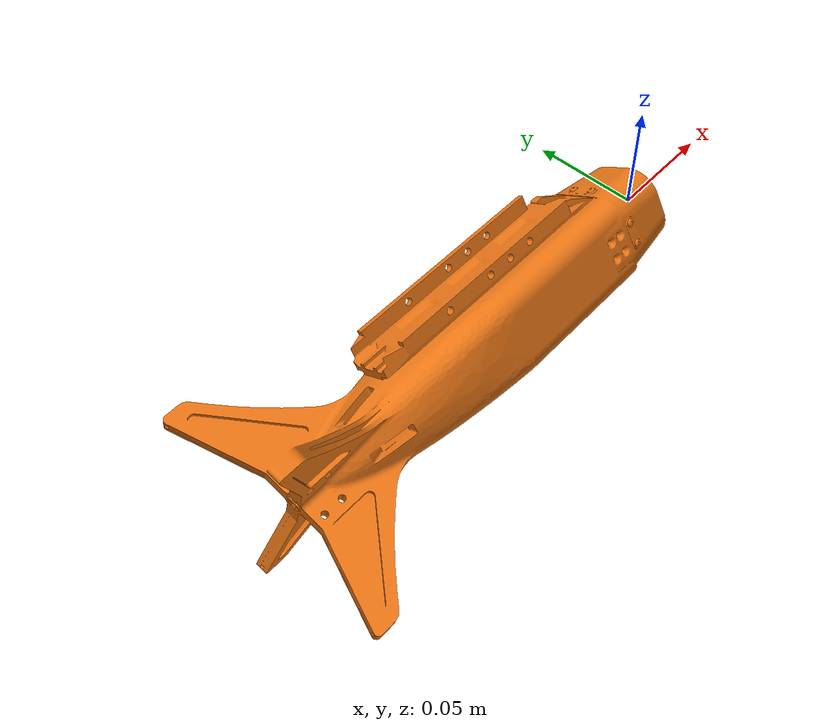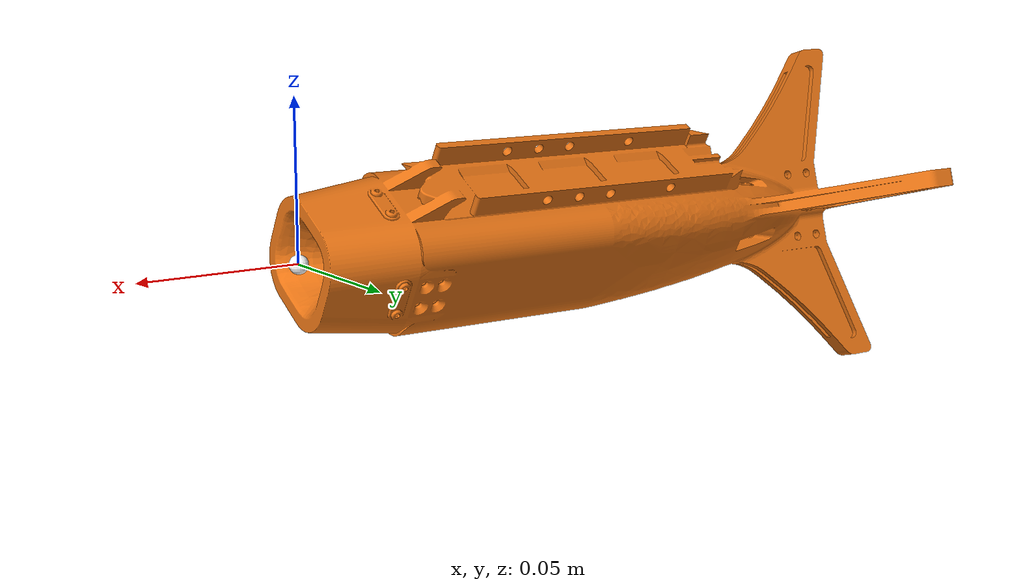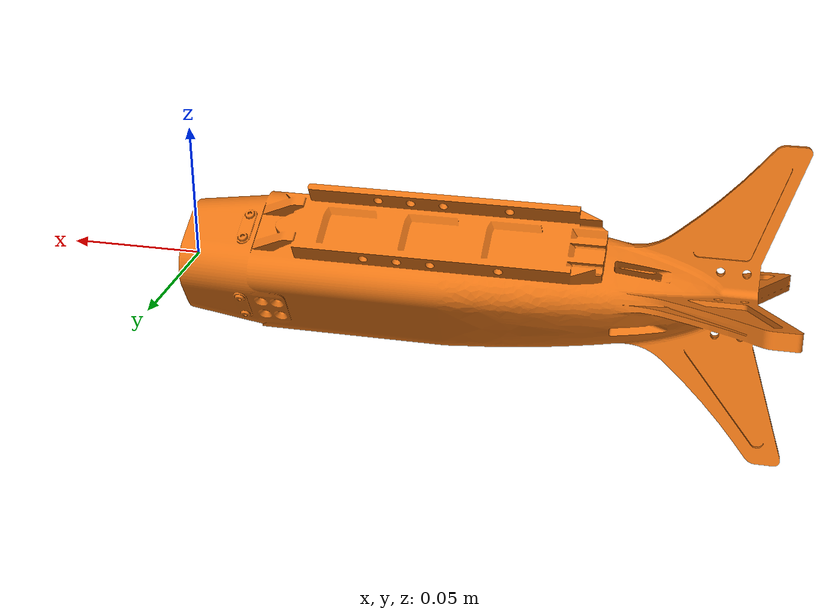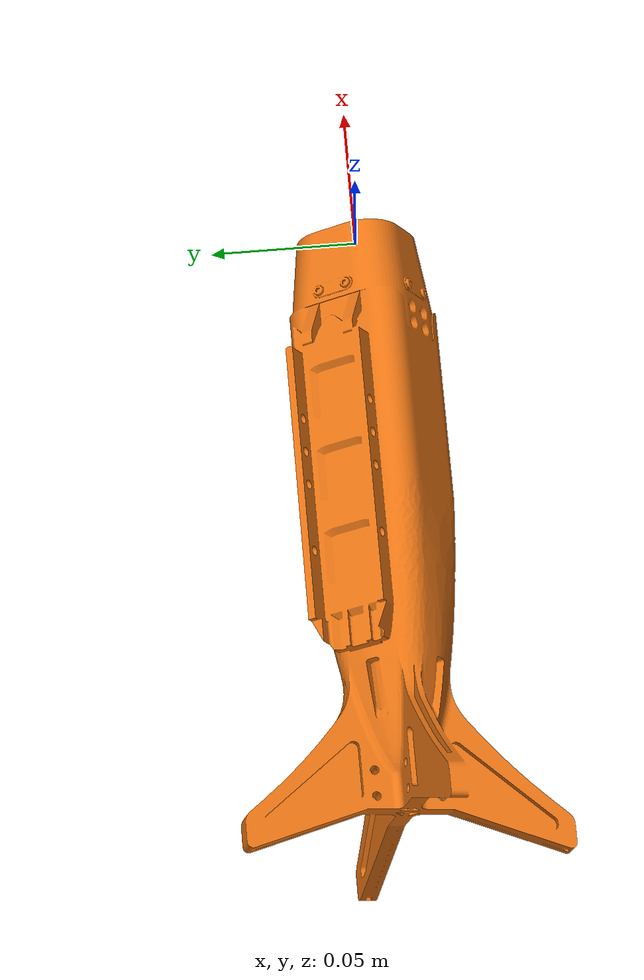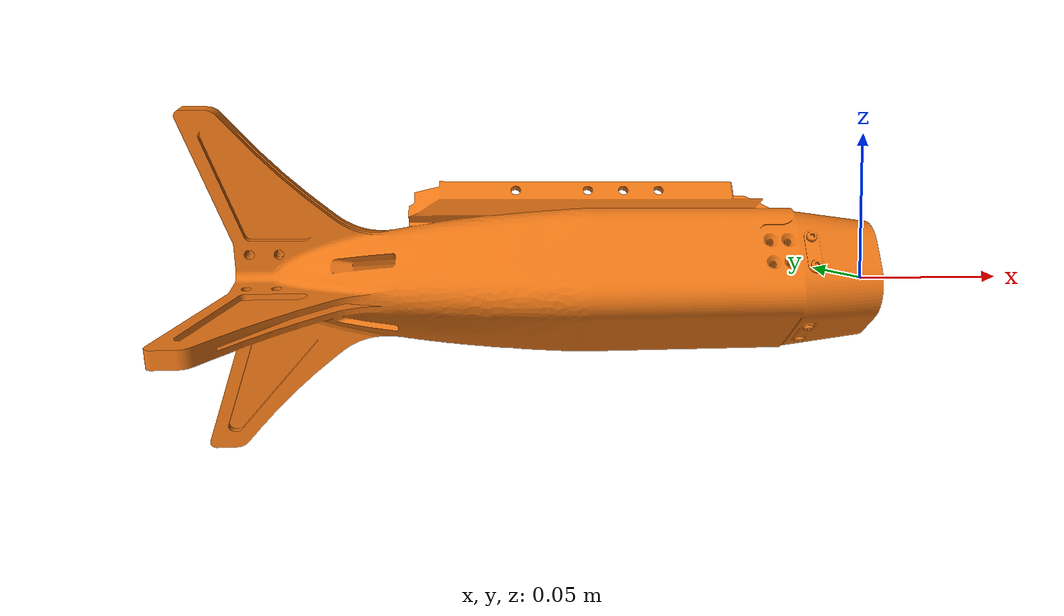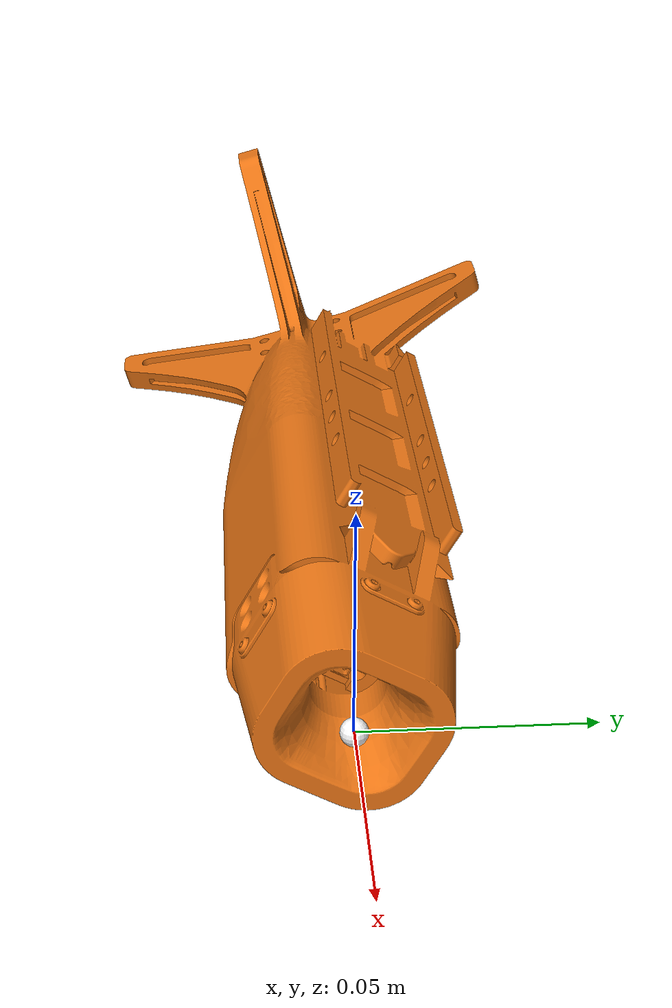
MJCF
<mujoco model="rm27_dart">
  <compiler angle="radian" />
  <option timestep=".002" gravity="0 0 -9.81" />
  <visual>
    <global offwidth="1280" offheight="720" />
  </visual>
  <asset>
    <mesh name="rm27_dart_visual" file="assets/dart_visual.obj" maxhullvert="4" />
  </asset>
  <worldbody>
    <!-- The body origin is the dart front-face center; local +X points forward. -->
    <body name="darts_projectile" mocap="true">
      <geom name="darts_visual" type="mesh" mesh="rm27_dart_visual"
            contype="0" conaffinity="0" group="2" rgba=".9 .45 .08 1" />
      <site name="darts_front" pos="0 0 0" size=".003" rgba="1 1 1 1" />
      <!-- MuJoCo camera frame is right, up, backward; this maps dart +X to optical forward. -->
      <camera name="darts_fpv" pos="0 0 0" quat="-.5 -.5 .5 .5"
              fovy="60" ipd="0" />
    </body>
  </worldbody>
</mujoco>
